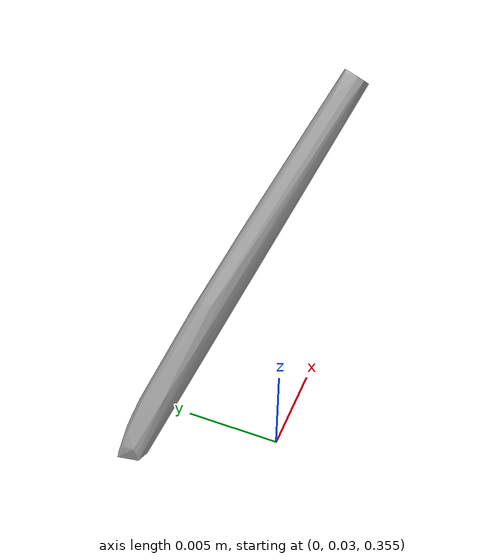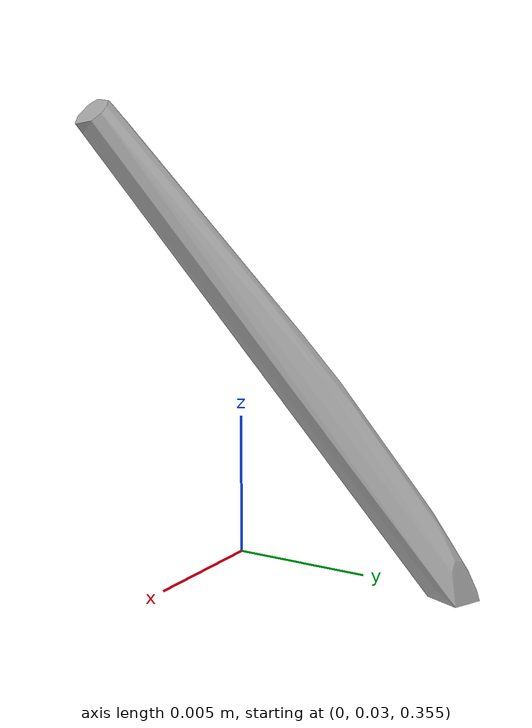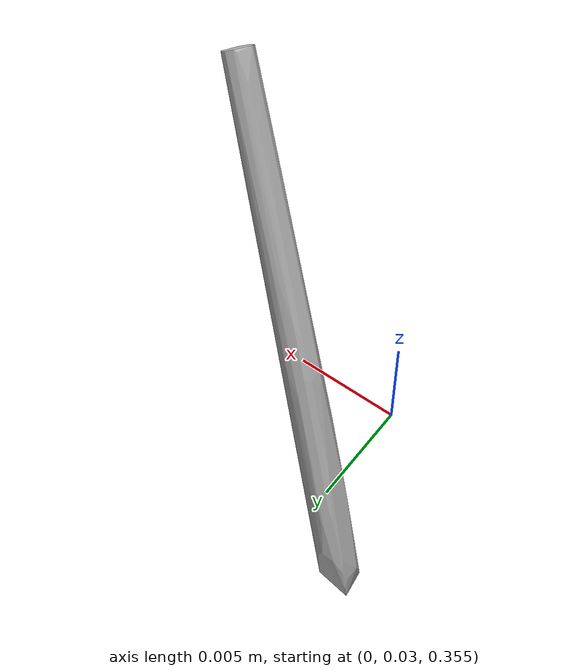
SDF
<?xml version="1.0"?>
<sdf version="1.7">
  <model name="vascular_partexport013">
    <link name="vascular_partexport013_body">
      <visual name="vascular_partexport013_visual">
        <geometry>
          <mesh>
            <uri>vascular_partexport013.obj</uri>
          </mesh>
        </geometry>
      </visual>
      <collision name="vascular_partexport013_collision">
        <geometry>
          <mesh>
            <uri>vascular_partexport013.obj</uri>
          </mesh>
        </geometry>
      </collision>
    </link>
    <frame name="vascular_partexport013_center">
      <pose relative_to="vascular_partexport013_body">0 0 0 0 0 0</pose>
    </frame>
  </model>
</sdf>
